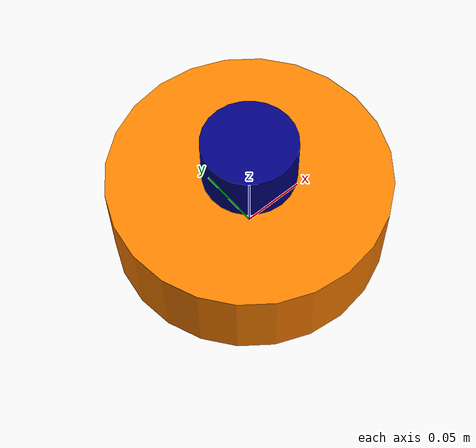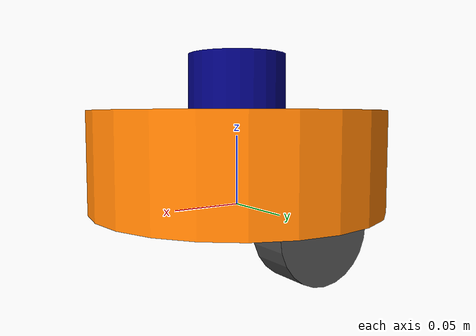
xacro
<?xml version="1.0" ?>
<robot name="turtlebot3_burger" xmlns:xacro="http://ros.org/wiki/xacro">

  <!-- Properties -->
  <xacro:property name="M_PI" value="3.1415926535897931" />

  <!-- Wheel properties -->
  <xacro:property name="wheel_radius" value="0.033" />
  <xacro:property name="wheel_width" value="0.026" />
  <xacro:property name="wheel_separation" value="0.160" />
  <xacro:property name="wheel_mass" value="0.01" />

  <!-- Base properties -->
  <xacro:property name="base_radius" value="0.105" />
  <xacro:property name="base_height" value="0.070" />
  <xacro:property name="base_mass" value="1.0" />

  <!-- Caster wheel -->
  <xacro:property name="caster_radius" value="0.005" />
  <xacro:property name="caster_mass" value="0.005" />

  <!-- Inertial macro -->
  <xacro:macro name="cylinder_inertia" params="mass r h">
    <inertia ixx="${mass*(3*r*r+h*h)/12}" ixy="0" ixz="0"
             iyy="${mass*(3*r*r+h*h)/12}" iyz="0"
             izz="${mass*r*r/2}" />
  </xacro:macro>

  <xacro:macro name="sphere_inertia" params="mass r">
    <inertia ixx="${2*mass*r*r/5}" ixy="0" ixz="0"
             iyy="${2*mass*r*r/5}" iyz="0"
             izz="${2*mass*r*r/5}" />
  </xacro:macro>

  <!-- Base link -->
  <link name="base_footprint"/>

  <joint name="base_joint" type="fixed">
    <parent link="base_footprint"/>
    <child link="base_link"/>
    <origin xyz="0 0 ${wheel_radius}" rpy="0 0 0"/>
  </joint>

  <link name="base_link">
    <visual>
      <origin xyz="0 0 0" rpy="0 0 0"/>
      <geometry>
        <cylinder radius="${base_radius}" length="${base_height}"/>
      </geometry>
      <material name="orange">
        <color rgba="1.0 0.5 0.0 1.0"/>
      </material>
    </visual>
    <collision>
      <origin xyz="0 0 0" rpy="0 0 0"/>
      <geometry>
        <cylinder radius="${base_radius}" length="${base_height}"/>
      </geometry>
    </collision>
    <inertial>
      <origin xyz="0 0 0" rpy="0 0 0"/>
      <mass value="${base_mass}"/>
      <xacro:cylinder_inertia mass="${base_mass}" r="${base_radius}" h="${base_height}"/>
    </inertial>
  </link>

  <!-- Left wheel -->
  <link name="wheel_left_link">
    <visual>
      <origin xyz="0 0 0" rpy="${M_PI/2} 0 0"/>
      <geometry>
        <cylinder radius="${wheel_radius}" length="${wheel_width}"/>
      </geometry>
      <material name="dark_grey">
        <color rgba="0.3 0.3 0.3 1.0"/>
      </material>
    </visual>
    <collision>
      <origin xyz="0 0 0" rpy="${M_PI/2} 0 0"/>
      <geometry>
        <cylinder radius="${wheel_radius}" length="${wheel_width}"/>
      </geometry>
    </collision>
    <inertial>
      <origin xyz="0 0 0" rpy="${M_PI/2} 0 0"/>
      <mass value="${wheel_mass}"/>
      <xacro:cylinder_inertia mass="${wheel_mass}" r="${wheel_radius}" h="${wheel_width}"/>
    </inertial>
  </link>

  <joint name="wheel_left_joint" type="continuous">
    <parent link="base_link"/>
    <child link="wheel_left_link"/>
    <origin xyz="0 ${wheel_separation/2} ${-base_height/2}" rpy="0 0 0"/>
    <axis xyz="0 1 0"/>
  </joint>

  <!-- Right wheel -->
  <link name="wheel_right_link">
    <visual>
      <origin xyz="0 0 0" rpy="${M_PI/2} 0 0"/>
      <geometry>
        <cylinder radius="${wheel_radius}" length="${wheel_width}"/>
      </geometry>
      <material name="dark_grey">
        <color rgba="0.3 0.3 0.3 1.0"/>
      </material>
    </visual>
    <collision>
      <origin xyz="0 0 0" rpy="${M_PI/2} 0 0"/>
      <geometry>
        <cylinder radius="${wheel_radius}" length="${wheel_width}"/>
      </geometry>
    </collision>
    <inertial>
      <origin xyz="0 0 0" rpy="${M_PI/2} 0 0"/>
      <mass value="${wheel_mass}"/>
      <xacro:cylinder_inertia mass="${wheel_mass}" r="${wheel_radius}" h="${wheel_width}"/>
    </inertial>
  </link>

  <joint name="wheel_right_joint" type="continuous">
    <parent link="base_link"/>
    <child link="wheel_right_link"/>
    <origin xyz="0 ${-wheel_separation/2} ${-base_height/2}" rpy="0 0 0"/>
    <axis xyz="0 1 0"/>
  </joint>

  <!-- Caster wheel (front) -->
  <link name="caster_link">
    <visual>
      <origin xyz="0 0 0" rpy="0 0 0"/>
      <geometry>
        <sphere radius="${caster_radius}"/>
      </geometry>
      <material name="grey">
        <color rgba="0.5 0.5 0.5 1.0"/>
      </material>
    </visual>
    <collision>
      <origin xyz="0 0 0" rpy="0 0 0"/>
      <geometry>
        <sphere radius="${caster_radius}"/>
      </geometry>
    </collision>
    <inertial>
      <origin xyz="0 0 0" rpy="0 0 0"/>
      <mass value="${caster_mass}"/>
      <xacro:sphere_inertia mass="${caster_mass}" r="${caster_radius}"/>
    </inertial>
  </link>

  <joint name="caster_joint" type="fixed">
    <parent link="base_link"/>
    <child link="caster_link"/>
    <origin xyz="${base_radius*0.6} 0 ${-base_height/2-caster_radius}" rpy="0 0 0"/>
  </joint>

  <!-- LiDAR sensor -->
  <link name="lidar_link">
    <visual>
      <origin xyz="0 0 0" rpy="0 0 0"/>
      <geometry>
        <cylinder radius="0.035" length="0.040"/>
      </geometry>
      <material name="dark_blue">
        <color rgba="0.0 0.0 0.5 1.0"/>
      </material>
    </visual>
    <collision>
      <origin xyz="0 0 0" rpy="0 0 0"/>
      <geometry>
        <cylinder radius="0.035" length="0.040"/>
      </geometry>
    </collision>
    <inertial>
      <origin xyz="0 0 0" rpy="0 0 0"/>
      <mass value="0.125"/>
      <inertia ixx="0.001" ixy="0" ixz="0"
               iyy="0.001" iyz="0"
               izz="0.001" />
    </inertial>
  </link>

  <joint name="lidar_joint" type="fixed">
    <parent link="base_link"/>
    <child link="lidar_link"/>
    <origin xyz="0 0 ${base_height/2 + 0.02}" rpy="0 0 0"/>
  </joint>

  <!-- Gazebo plugins and sensor definitions -->
  <gazebo>
    <plugin filename="gz-sim-diff-drive-system" name="gz::sim::systems::DiffDrive">
      <left_joint>wheel_left_joint</left_joint>
      <right_joint>wheel_right_joint</right_joint>
      <wheel_separation>${wheel_separation}</wheel_separation>
      <wheel_radius>${wheel_radius}</wheel_radius>
      <odom_publish_frequency>50</odom_publish_frequency>
      <topic>cmd_vel</topic>
      <odom_topic>odom</odom_topic>
      <frame_id>odom</frame_id>
      <child_frame_id>base_footprint</child_frame_id>
    </plugin>

    <plugin filename="gz-sim-joint-state-publisher-system" name="gz::sim::systems::JointStatePublisher">
      <topic>joint_states</topic>
    </plugin>
  </gazebo>

  <!-- LiDAR sensor plugin -->
  <gazebo reference="lidar_link">
    <sensor name="lidar" type="gpu_lidar">
      <topic>scan</topic>
      <update_rate>10</update_rate>
      <lidar>
        <scan>
          <horizontal>
            <samples>360</samples>
            <resolution>1</resolution>
            <min_angle>0.0</min_angle>
            <max_angle>6.28</max_angle>
          </horizontal>
        </scan>
        <range>
          <min>0.12</min>
          <max>3.5</max>
          <resolution>0.015</resolution>
        </range>
        <noise>
          <type>gaussian</type>
          <mean>0.0</mean>
          <stddev>0.01</stddev>
        </noise>
      </lidar>
      <always_on>1</always_on>
      <visualize>true</visualize>
    </sensor>
  </gazebo>

  <!-- Material colors for Gazebo -->
  <gazebo reference="base_link">
    <material>Gazebo/Orange</material>
  </gazebo>

  <gazebo reference="wheel_left_link">
    <material>Gazebo/DarkGrey</material>
  </gazebo>

  <gazebo reference="wheel_right_link">
    <material>Gazebo/DarkGrey</material>
  </gazebo>

  <gazebo reference="lidar_link">
    <material>Gazebo/Blue</material>
  </gazebo>

</robot>
